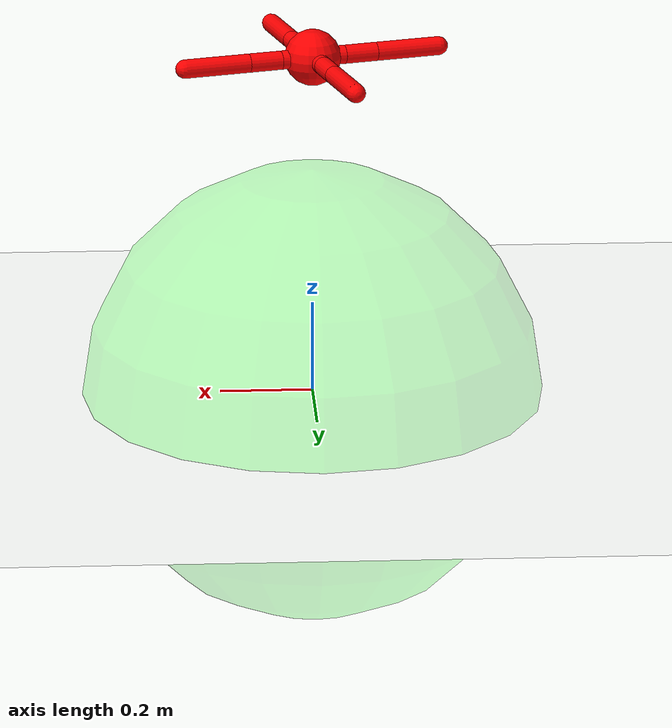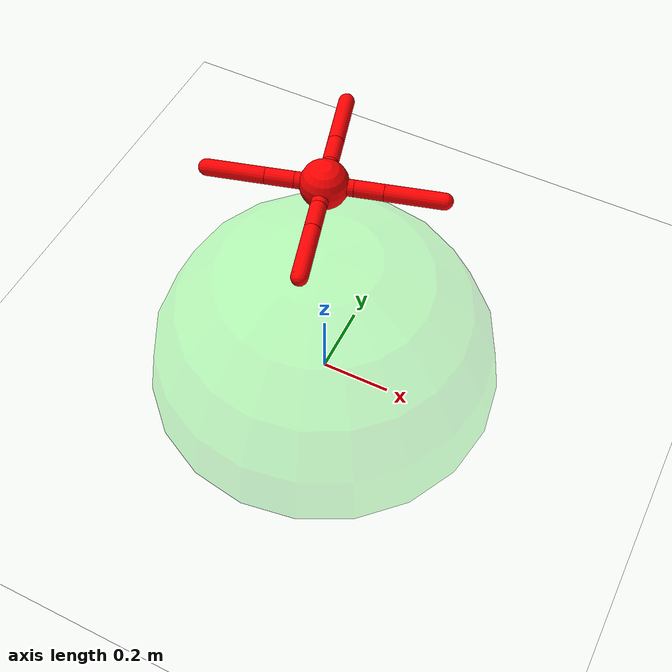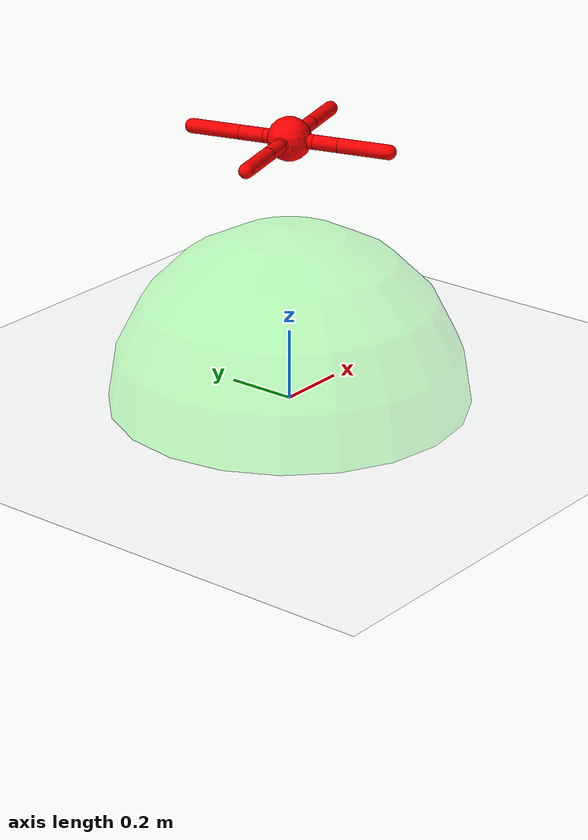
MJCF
<?xml version="1.0" encoding="utf-8"?>
<mujoco>
	<option timestep="0.02"></option>
	<size njmax="3000" nconmax="1000"></size>
	<default>
		<joint armature="1" damping="1" limited="true"></joint>
		<geom condim="3" density="5.0" friction="0.75 0.01 0.01" margin="0.01" rgba="1 0 0 1"></geom>
		<motor ctrllimited="true" ctrlrange="-1.0 1.0" gear="50"></motor>
		<site size="0.2" type="sphere" rgba="0 0 1 0"></site>
	</default>
	<worldbody>
		<geom name="floor" size="3.5 3.5 0.1" type="plane" condim="3" rgba="1 1 1 1" material="MatPlane"></geom>
		<body name="robot" pos="0.0 0.0 0.75" quat="0.2533820055482905 0.0 0.0 0.9673663004593069">
			<site name="robot" rgba="1 0 0 .01"></site>
			<camera name="vision" pos=".125 0 .2" xyaxes="0 -1 0 .4 0 1" fovy="100"></camera>
			<camera name="track" mode="track" pos="-0.9804528532408373 1.7431902370573045 2" xyaxes="-0.8715951185286522 -0.49022642662041865 0 0.49022642662041865 -0.8715951185286522 1"></camera>
			<geom name="robot" pos="0 0 0" size="0.06" type="sphere"></geom>
			<joint armature="0" damping="0" limited="false" margin="0.01" name="robot" pos="0 0 0" type="free"></joint>
			<body name="front_left_leg" pos="0 0 0">
				<geom fromto="0.0 0.0 0.0 0.05 0.05 0.0" name="aux_1_geom" size="0.02" type="capsule"></geom>
				<body name="aux_1" pos="0.05 0.05 0">
					<joint axis="0 0 1" name="hip_1" pos="0.0 0.0 0.0" range="-30 30" type="hinge"></joint>
					<geom fromto="0.0 0.0 0.0 0.05 0.05 0.0" name="front_left_leg_geom" size="0.02" type="capsule"></geom>
					<body pos="0.05 0.05 0">
						<joint axis="-1 1 0" name="ankle_1" pos="0.0 0.0 0.0" range="30 70" type="hinge"></joint>
						<geom fromto="0.0 0.0 0.0 0.1 0.1 0.0" name="front_left_ankle_geom" size="0.02" type="capsule"></geom>
						<site name="ankle_1a" pos="0 0 0"></site>
						<site name="ankle_1b" pos="0.1 0.1 0.0"></site>
					</body>
				</body>
			</body>
			<body name="front_right_leg" pos="0 0 0">
				<geom fromto="0.0 0.0 0.0 -0.05 0.05 0.0" name="aux_2_geom" size="0.02" type="capsule"></geom>
				<body name="aux_2" pos="-0.05 0.05 0">
					<joint axis="0 0 1" name="hip_2" pos="0.0 0.0 0.0" range="-30 30" type="hinge"></joint>
					<geom fromto="0.0 0.0 0.0 -0.05 0.05 0.0" name="front_right_leg_geom" size="0.02" type="capsule"></geom>
					<body pos="-0.05 0.05 0">
						<joint axis="1 1 0" name="ankle_2" pos="0.0 0.0 0.0" range="-70 -30" type="hinge"></joint>
						<geom fromto="0.0 0.0 0.0 -0.1 0.1 0.0" name="front_right_ankle_geom" size="0.02" type="capsule"></geom>
						<site name="ankle_2a" pos="0 0 0"></site>
						<site name="ankle_2b" pos="-0.1 0.1 0.0"></site>
					</body>
				</body>
			</body>
			<body name="back_left_leg" pos="0 0 0">
				<geom fromto="0.0 0.0 0.0 -0.05 -0.05 0.0" name="aux_3_geom" size="0.02" type="capsule"></geom>
				<body name="aux_3" pos="-0.05 -0.05 0">
					<joint axis="0 0 1" name="hip_3" pos="0.0 0.0 0.0" range="-30 30" type="hinge"></joint>
					<geom fromto="0.0 0.0 0.0 -0.05 -0.05 0.0" name="back_left_leg_geom" size="0.02" type="capsule"></geom>
					<body pos="-0.05 -0.05 0">
						<joint axis="-1 1 0" name="ankle_3" pos="0.0 0.0 0.0" range="-70 -30" type="hinge"></joint>
						<geom fromto="0.0 0.0 0.0 -0.1 -0.1 0.0" name="back_left_ankle_geom" size="0.02" type="capsule"></geom>
						<site name="ankle_3a" pos="0 0 0"></site>
						<site name="ankle_3b" pos="-0.1 -0.1 0.0"></site>
					</body>
				</body>
			</body>
			<body name="back_right_leg" pos="0 0 0">
				<geom fromto="0.0 0.0 0.0 0.05 -0.05 0.0" name="aux_4_geom" size="0.02" type="capsule"></geom>
				<body name="aux_4" pos="0.05 -0.05 0">
					<joint axis="0 0 1" name="hip_4" pos="0.0 0.0 0.0" range="-30 30" type="hinge"></joint>
					<geom fromto="0.0 0.0 0.0 0.05 -0.05 0.0" name="back_right_leg_geom" size="0.02" type="capsule"></geom>
					<body pos="0.05 -0.05 0">
						<joint axis="1 1 0" name="ankle_4" pos="0.0 0.0 0.0" range="30 70" type="hinge"></joint>
						<geom fromto="0.0 0.0 0.0 0.1 -0.1 0.0" name="back_right_ankle_geom" size="0.02" type="capsule"></geom>
						<site name="ankle_4a" pos="0 0 0"></site>
						<site name="ankle_4b" pos="0.1 -0.1 0.0"></site>
					</body>
				</body>
			</body>
		</body>
		<body name="goal" pos="0. 0. 0." quat="1. 0. 0. 0.">
			<joint type="slide" axis="1 0 0" name="goal_x" damping="0" limited="false"/>
            <joint type="slide" axis="0 1 0" name="goal_y" damping="0" limited="false"/>
			<geom name="goal" type="sphere" size="0.5" rgba="0.0 1.0 0.0 0.25" group="0" contype="0" conaffinity="0"></geom>
		</body>
		<body name="hazard0" pos="0. 0. 0." quat="1. 0. 0. 0.">
			<joint type="slide" axis="1 0 0" name="hazard0_x" damping="0" limited="false"/>
            <joint type="slide" axis="0 1 0" name="hazard0_y" damping="0" limited="false"/>
			<geom name="hazard0" type="sphere" size="0.3 " rgba="0.0 0.0 1.0 0.25" group="3" contype="0" conaffinity="0"></geom>
		</body>
		<light cutoff="100" diffuse="1 1 1" dir="0 0 -1" directional="true" exponent="1" pos="0 0 0.5" specular="0 0 0" castshadow="false"></light>
		<camera name="fixednear" pos="0 -2 2" zaxis="0 -1 1"></camera>
		<camera name="fixedfar" pos="0 -5 5" zaxis="0 -1 1"></camera>
	</worldbody>
	<sensor>
		<accelerometer site="robot" name="accelerometer"></accelerometer>
		<velocimeter site="robot" name="velocimeter"></velocimeter>
		<gyro site="robot" name="gyro"></gyro>
		<magnetometer site="robot" name="magnetometer"></magnetometer>
		<subtreecom body="robot" name="subtreecom"></subtreecom>
		<subtreelinvel body="robot" name="subtreelinvel"></subtreelinvel>
		<subtreeangmom body="robot" name="subtreeangmom"></subtreeangmom>
	</sensor>
	<actuator>
        <motor name="hip_1" joint="hip_1"></motor>
		<motor name="ankle_1" joint="ankle_1"></motor>
		<motor name="hip_2" joint="hip_2"></motor>
		<motor name="ankle_2" joint="ankle_2"></motor>
		<motor name="hip_3" joint="hip_3"></motor>
		<motor name="ankle_3" joint="ankle_3"></motor>
		<motor name="hip_4" joint="hip_4"></motor>
		<motor name="ankle_4" joint="ankle_4"></motor>
	</actuator>
	<equality>
	</equality>
	<asset>
		<texture type="skybox" builtin="gradient" rgb1="0.527 0.582 0.906" rgb2="0.1 0.1 0.35" width="800" height="800" markrgb="1 1 1" mark="random" random="0.001"></texture>
		<texture name="texplane" builtin="checker" height="100" width="100" rgb1="0.7 0.7 0.7" rgb2="0.8 0.8 0.8" type="2d"></texture>
		<material name="MatPlane" reflectance="0.1" shininess="0.1" specular="0.1" texrepeat="10 10" texture="texplane"></material>
	</asset>
</mujoco>
